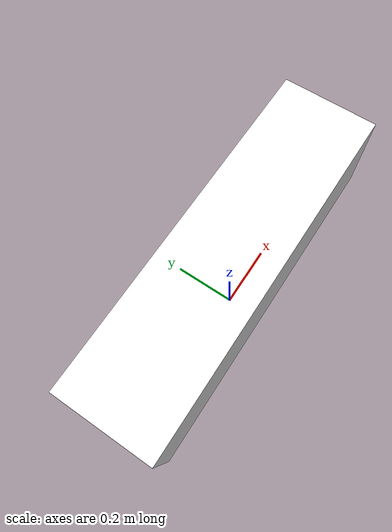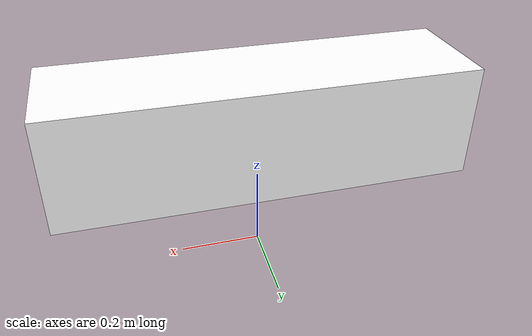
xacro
<?xml version="1.0"?>
<robot name="ackermann_1" xmlns:xacro="http://www.ros.org/wiki/xacro">

    <xacro:include filename="inertial_macros.xacro" />

    <!-- MACROS FOR COLORS -->
    <material name="white">
        <color rgba="1 1 1 1" />
    </material>

    <material name="orange">
        <color rgba="1 0.3 0.1 1" />
    </material>

    <material name="blue">
        <color rgba="0.2 0.2 1 1" />
    </material>

    <material name="black">
        <color rgba="0 0 0 1" />
    </material>

    <material name="red">
        <color rgba="1 0 0 1" />
    </material>
    <!-- PROPERTIES FOR SIZES -->
    <xacro:property name="chasis_x" value="0.98" />
    <xacro:property name="chasis_y" value="0.27" />
    <xacro:property name="chasis_z" value="0.27" />
    <xacro:property name="chasis_mass" value="70" />

    <xacro:property name="wheel_radius" value="0.155" />
    <xacro:property name="wheel_thickness" value="0.14" />
    <xacro:property name="wheel_sep" value="0.605" />
    <xacro:property name="front_rear_sep" value="0.646" />
    <xacro:property name="wheel_mass" value="0.25" />
    <xacro:property name="max_steer" value="1.6" />
    <xacro:property name="mu1" value="2" />
    <xacro:property name="mu2" value="2" />
    <!-- Base link -->

    <link name="base_footprint" />

    <joint name="base_footprint_joint" type="fixed">
        <parent link="base_footprint" />
        <child link="base_link" />
        <origin xyz="0 0 0.35" rpy="0 0 0" />
    </joint>

    <link name="base_link">
        <visual>
            <geometry>
                <box size="${chasis_x} ${chasis_y} ${chasis_z}" />
            </geometry>
            <material name="white" />
        </visual>
        <collision>
            <origin xyz="0 0 ${chasis_z/2}" rpy="0 0 0" />
            <geometry>
                <box size="${chasis_x} ${chasis_y} ${chasis_z}" />
            </geometry>
        </collision>
    </link>

</robot>
